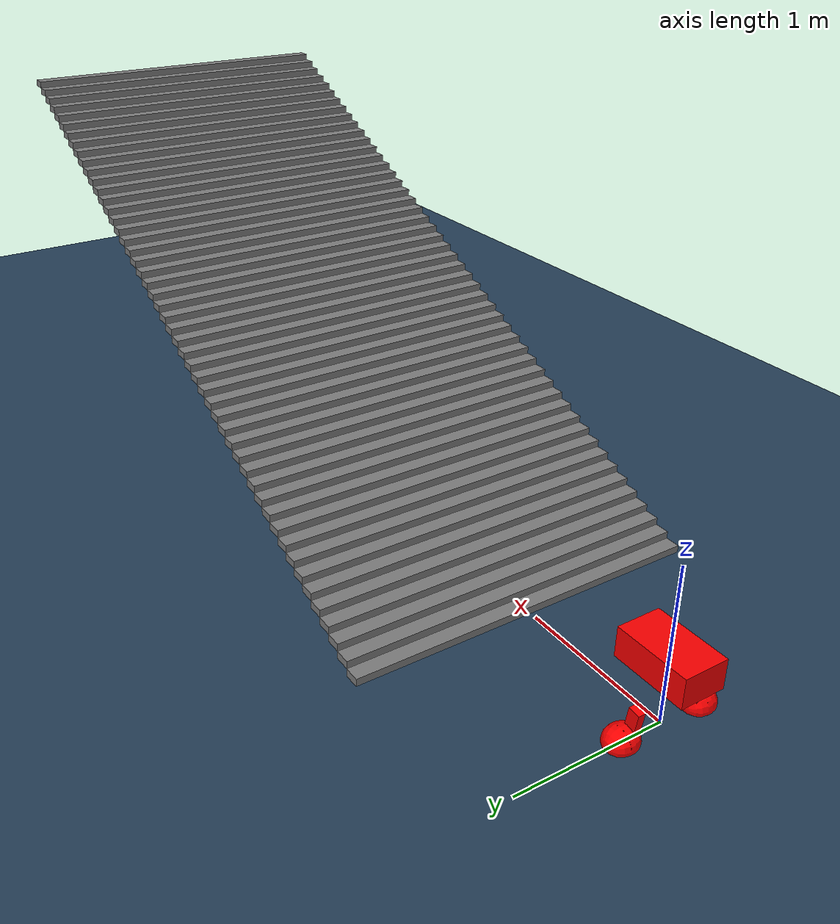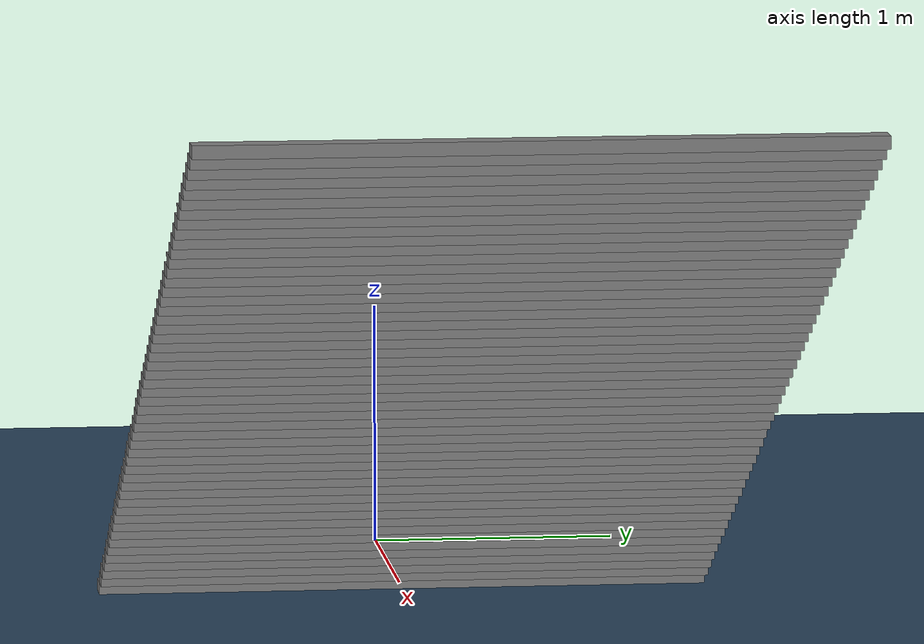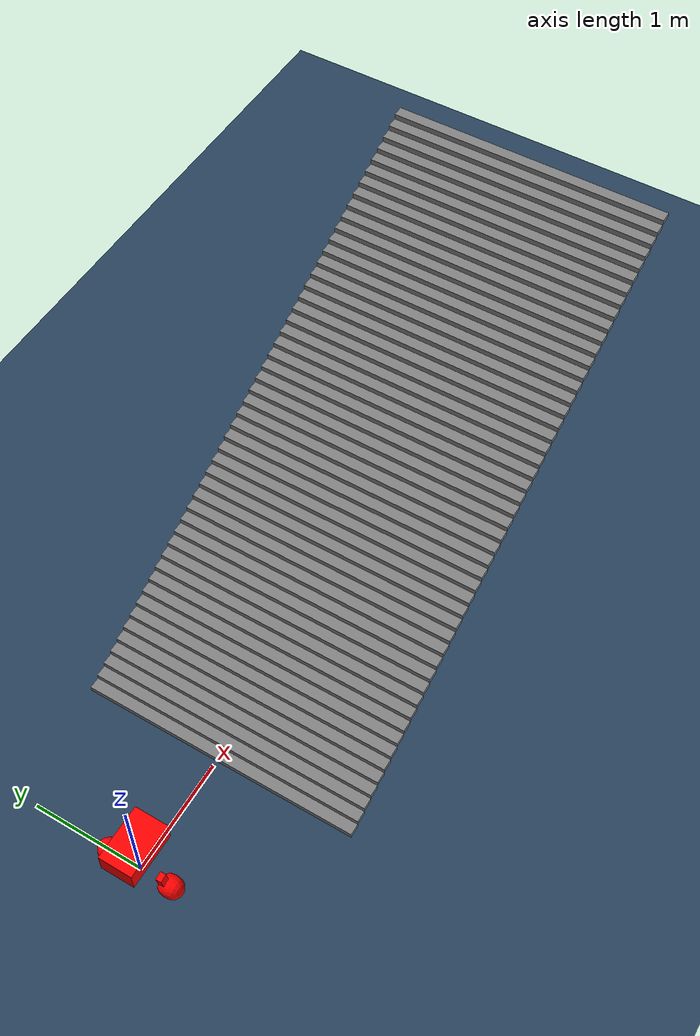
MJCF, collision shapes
<mujoco model="tita scene">
  <include file="tita.xml"/>

  <statistic center="0 0 0.1" extent="0.8" />

  <visual>
    <headlight diffuse="0.6 0.6 0.6" ambient="0.3 0.3 0.3" specular="0 0 0" />
    <rgba haze="0.15 0.25 0.35 1" />
    <global azimuth="-130" elevation="-20" />
  </visual>

  <asset>
    <texture type="skybox" builtin="gradient" rgb1="0.3 0.5 0.7" rgb2="0 0 0" width="512" height="3072" />
    <texture type="2d" name="groundplane" builtin="checker" mark="edge" rgb1="0.2 0.3 0.4" rgb2="0.1 0.2 0.3" markrgb="0.8 0.8 0.8" width="300" height="300" />
    <material name="groundplane" texture="groundplane" texuniform="true" texrepeat="5 5" reflectance="0.2" />
  </asset>

  <worldbody>
    <light pos="0 0 1.5" dir="0 0 -1" directional="true" />
    <geom name="floor" size="0 0 0.05" type="plane" material="groundplane"
    contype="1" conaffinity="0" priority="1" friction="0.6" condim="3"/>
  <geom pos="1.1 0.0 0.025" type="box" size="0.05 1.25 0.025" quat="1.0 0.0 0.0 0.0" /><geom pos="1.2 0.0 0.07500000000000001" type="box" size="0.05 1.25 0.025" quat="1.0 0.0 0.0 0.0" /><geom pos="1.3 0.0 0.125" type="box" size="0.05 1.25 0.025" quat="1.0 0.0 0.0 0.0" /><geom pos="1.4 0.0 0.175" type="box" size="0.05 1.25 0.025" quat="1.0 0.0 0.0 0.0" /><geom pos="1.5 0.0 0.22499999999999998" type="box" size="0.05 1.25 0.025" quat="1.0 0.0 0.0 0.0" /><geom pos="1.6 0.0 0.27499999999999997" type="box" size="0.05 1.25 0.025" quat="1.0 0.0 0.0 0.0" /><geom pos="1.7 0.0 0.32499999999999996" type="box" size="0.05 1.25 0.025" quat="1.0 0.0 0.0 0.0" /><geom pos="1.7999999999999998 0.0 0.37499999999999994" type="box" size="0.05 1.25 0.025" quat="1.0 0.0 0.0 0.0" /><geom pos="1.9 0.0 0.42499999999999993" type="box" size="0.05 1.25 0.025" quat="1.0 0.0 0.0 0.0" /><geom pos="2.0 0.0 0.4749999999999999" type="box" size="0.05 1.25 0.025" quat="1.0 0.0 0.0 0.0" /><geom pos="2.0999999999999996 0.0 0.5249999999999999" type="box" size="0.05 1.25 0.025" quat="1.0 0.0 0.0 0.0" /><geom pos="2.2 0.0 0.575" type="box" size="0.05 1.25 0.025" quat="1.0 0.0 0.0 0.0" /><geom pos="2.3 0.0 0.625" type="box" size="0.05 1.25 0.025" quat="1.0 0.0 0.0 0.0" /><geom pos="2.4000000000000004 0.0 0.675" type="box" size="0.05 1.25 0.025" quat="1.0 0.0 0.0 0.0" /><geom pos="2.5 0.0 0.7250000000000001" type="box" size="0.05 1.25 0.025" quat="1.0 0.0 0.0 0.0" /><geom pos="2.6000000000000005 0.0 0.7750000000000001" type="box" size="0.05 1.25 0.025" quat="1.0 0.0 0.0 0.0" /><geom pos="2.7 0.0 0.8250000000000002" type="box" size="0.05 1.25 0.025" quat="1.0 0.0 0.0 0.0" /><geom pos="2.8000000000000007 0.0 0.8750000000000002" type="box" size="0.05 1.25 0.025" quat="1.0 0.0 0.0 0.0" /><geom pos="2.9000000000000004 0.0 0.9250000000000003" type="box" size="0.05 1.25 0.025" quat="1.0 0.0 0.0 0.0" /><geom pos="3.0000000000000004 0.0 0.9750000000000003" type="box" size="0.05 1.25 0.025" quat="1.0 0.0 0.0 0.0" /><geom pos="3.1000000000000005 0.0 1.0250000000000004" type="box" size="0.05 1.25 0.025" quat="1.0 0.0 0.0 0.0" /><geom pos="3.2000000000000006 0.0 1.0750000000000004" type="box" size="0.05 1.25 0.025" quat="1.0 0.0 0.0 0.0" /><geom pos="3.3000000000000007 0.0 1.1250000000000004" type="box" size="0.05 1.25 0.025" quat="1.0 0.0 0.0 0.0" /><geom pos="3.400000000000001 0.0 1.1750000000000005" type="box" size="0.05 1.25 0.025" quat="1.0 0.0 0.0 0.0" /><geom pos="3.500000000000001 0.0 1.2250000000000005" type="box" size="0.05 1.25 0.025" quat="1.0 0.0 0.0 0.0" /><geom pos="3.600000000000001 0.0 1.2750000000000006" type="box" size="0.05 1.25 0.025" quat="1.0 0.0 0.0 0.0" /><geom pos="3.700000000000001 0.0 1.3250000000000006" type="box" size="0.05 1.25 0.025" quat="1.0 0.0 0.0 0.0" /><geom pos="3.800000000000001 0.0 1.3750000000000007" type="box" size="0.05 1.25 0.025" quat="1.0 0.0 0.0 0.0" /><geom pos="3.9000000000000012 0.0 1.4250000000000007" type="box" size="0.05 1.25 0.025" quat="1.0 0.0 0.0 0.0" /><geom pos="4.000000000000002 0.0 1.4750000000000008" type="box" size="0.05 1.25 0.025" quat="1.0 0.0 0.0 0.0" /><geom pos="4.100000000000001 0.0 1.5250000000000008" type="box" size="0.05 1.25 0.025" quat="1.0 0.0 0.0 0.0" /><geom pos="4.200000000000001 0.0 1.5750000000000008" type="box" size="0.05 1.25 0.025" quat="1.0 0.0 0.0 0.0" /><geom pos="4.300000000000002 0.0 1.6250000000000009" type="box" size="0.05 1.25 0.025" quat="1.0 0.0 0.0 0.0" /><geom pos="4.400000000000002 0.0 1.675000000000001" type="box" size="0.05 1.25 0.025" quat="1.0 0.0 0.0 0.0" /><geom pos="4.500000000000002 0.0 1.725000000000001" type="box" size="0.05 1.25 0.025" quat="1.0 0.0 0.0 0.0" /><geom pos="4.600000000000001 0.0 1.775000000000001" type="box" size="0.05 1.25 0.025" quat="1.0 0.0 0.0 0.0" /><geom pos="4.700000000000002 0.0 1.825000000000001" type="box" size="0.05 1.25 0.025" quat="1.0 0.0 0.0 0.0" /><geom pos="4.8000000000000025 0.0 1.875000000000001" type="box" size="0.05 1.25 0.025" quat="1.0 0.0 0.0 0.0" /><geom pos="4.900000000000002 0.0 1.9250000000000012" type="box" size="0.05 1.25 0.025" quat="1.0 0.0 0.0 0.0" /><geom pos="5.000000000000002 0.0 1.9750000000000012" type="box" size="0.05 1.25 0.025" quat="1.0 0.0 0.0 0.0" /><geom pos="5.100000000000001 0.0 2.0250000000000012" type="box" size="0.05 1.25 0.025" quat="1.0 0.0 0.0 0.0" /><geom pos="5.200000000000001 0.0 2.075000000000001" type="box" size="0.05 1.25 0.025" quat="1.0 0.0 0.0 0.0" /><geom pos="5.300000000000001 0.0 2.125000000000001" type="box" size="0.05 1.25 0.025" quat="1.0 0.0 0.0 0.0" /><geom pos="5.4 0.0 2.1750000000000007" type="box" size="0.05 1.25 0.025" quat="1.0 0.0 0.0 0.0" /><geom pos="5.5 0.0 2.2250000000000005" type="box" size="0.05 1.25 0.025" quat="1.0 0.0 0.0 0.0" /><geom pos="5.6 0.0 2.2750000000000004" type="box" size="0.05 1.25 0.025" quat="1.0 0.0 0.0 0.0" /><geom pos="5.699999999999999 0.0 2.325" type="box" size="0.05 1.25 0.025" quat="1.0 0.0 0.0 0.0" /><geom pos="5.799999999999999 0.0 2.375" type="box" size="0.05 1.25 0.025" quat="1.0 0.0 0.0 0.0" /><geom pos="5.899999999999999 0.0 2.425" type="box" size="0.05 1.25 0.025" quat="1.0 0.0 0.0 0.0" /><geom pos="5.999999999999998 0.0 2.4749999999999996" type="box" size="0.05 1.25 0.025" quat="1.0 0.0 0.0 0.0" /></worldbody>

   <include file="sensor_feet.xml"/>
</mujoco>

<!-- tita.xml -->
<mujoco model="tita">
  <option gravity="0 0 -9.81" iterations="10" ls_iterations="5"  integrator="Euler" timestep="0.002"/>
  <default>
    <default class="robot">

      <joint armature="0.0005" damping="0.0"/>
      <default class="joint_1">
        <joint range="-0.785398 0.785398" frictionloss="0.0" />
        <motor ctrllimited="true" ctrlrange="-120 120" forcerange="-120 120" gear="1" />
      </default>
      <default class="joint_2">
        <joint range="-1.919862 3.490659" frictionloss="0.0" />
        <motor ctrllimited="true" ctrlrange="-120 120" forcerange="-120 120" gear="1" />
      </default>
      <default class="joint_3">
        <joint range="-2.670354 -0.698132" frictionloss="0.0" />
        <motor ctrllimited="true" ctrlrange="-120 120" forcerange="-120 120" gear="1" />
      </default>
      <default class="joint_4">
        <joint limited="false" frictionloss="0.0" />
        <motor ctrllimited="true" ctrlrange="-120 120" forcerange="-120 120" gear="1" />
      </default>

      <default class="visual">
        <geom material="visualgeom" contype="0" conaffinity="0" group="2" />
      </default>
      <default class="collision">
        <geom material="collision_material" rgba="1 0 0 0.1" condim="3" contype="0" conaffinity="1" priority="1" group="1" solref="0.005 1" friction="1 0.01 0.01" />
        <equality solimp="0.99 0.999 1e-5" solref="0.005 1" />

      </default>
    </default>
  </default>

  <compiler angle="radian" />

  <visual>
    <headlight diffuse="0.6 0.6 0.6" ambient="0.1 0.1 0.1" specular="0.9 0.9 0.9"/>
    <rgba haze="0.15 0.25 0.35 1"/>
    <global azimuth="-140" elevation="-20" fovy="10"/>
  </visual>

  <asset>
    <material name="black" rgba="0.19607843137254902 0.19607843137254902 0.19607843137254902 1.0" />
    <material name="blue" rgba="0.0 0.0 0.8 1.0" />
    <material name="green" rgba="0.0 0.8 0.0 1.0" />
    <material name="grey" rgba="0.2 0.2 0.2 1.0" />
    <material name="silver" rgba="0.9137254901960784 0.9137254901960784 0.8470588235294118 1.0" />
    <material name="orange" rgba="1.0 0.4235294117647059 0.0392156862745098 1.0" />
    <material name="brown" rgba="0.8705882352941177 0.8117647058823529 0.7647058823529411 1.0" />
    <material name="red" rgba="0.8 0.0 0.0 1.0" />
    <material name="white" rgba="1.0 1.0 1.0 1.0" />
    <material name="default_material" rgba="0.7 0.7 0.7 1" />
    <material name="collision_material" rgba="1.0 0.28 0.1 0.9" />
    <texture name="grid" type="2d" builtin="checker" width="512" height="512" rgb1=".1 .2 .3" rgb2=".2 .3 .4"/>
    <material name="grid" texture="grid" texrepeat="1 1" texuniform="true" reflectance=".2"/>
    <mesh name="base_link.STL" file="meshes/base_link.STL" />
    <mesh name="left_leg_1.STL" file="meshes/left_leg_1.STL" />
    <mesh name="left_leg_2.STL" file="meshes/left_leg_2.STL" />
    <mesh name="left_leg_3.STL" file="meshes/left_leg_3.STL" />
    <mesh name="left_leg_4.STL" file="meshes/left_leg_4.STL" />
    <mesh name="right_leg_1.STL" file="meshes/right_leg_1.STL" />
    <mesh name="right_leg_2.STL" file="meshes/right_leg_2.STL" />
    <mesh name="right_leg_3.STL" file="meshes/right_leg_3.STL" />
    <mesh name="right_leg_4.STL" file="meshes/right_leg_4.STL" />
  </asset>

  <worldbody>
    <body name="base_link" pos="0.00000000 0.00000000 0.41700019" quat="1 0 0 0" childclass="robot">
      <inertial
      pos="0.020452 0.0000035457 0.01871"
      fullinertia="0.061855 0.036934 0.071232  -2.6029e-05 0.00081082 -1.7269e-05"
      mass="13.2"/>
      <freejoint name="floating_base" />
      <geom name="base_link_collision" pos="0 0 0.017" quat="1.0 0.0 0.0 0.0" type="box" size="0.235 0.15 0.095" class="collision" />
      <geom name="base_link_visual" pos="0 0 0" quat="1.0 0.0 0.0 0.0" material="black" type="mesh" mesh="base_link.STL" class="visual" />
      <body name="spad" pos="0.24052 -0.0019 0.064455" quat="0.3210553530053693 0.630017161436136 0.6300194756226387 0.3210565323096963" />
      <body name="spad1" pos="0.21953 -0.0019 -0.030142" quat="0.17822474632683974 0.684276335404186 0.6842788488961296 0.1782254009840898" />
      <body name="left_camera" pos="0.23416 0.075 0.04036" quat="0.49999816339744846 0.4999999999966269 0.5000018366025516 0.4999999999966269" />
      <body name="ch201" pos="0.23782 0 0.018636" quat="0.5896590127793068 0.39025685393799525 0.39025828743409546 0.5896611787217797" />
      <body name="right_camara" pos="0.23416 -0.075001 0.04036" quat="0.49999816339744846 0.4999999999966269 0.5000018366025516 0.4999999999966269" />
      <body name="imu_link" pos="0 0 0" quat="1.0 0.0 0.0 0.0">
        <inertial pos="0 0 0" quat="1.0 0.0 0.0 0.0" mass="0.001" diaginertia="0.0001 0.0001 0.0001" />
        <geom name="imu_link_collision" pos="0 0 0" quat="1.0 0.0 0.0 0.0" type="box" size="0.0005 0.0005 0.0005" class="collision" />
        <geom name="imu_link_visual" pos="0 0 0" quat="1.0 0.0 0.0 0.0" material="red" type="box" size="0.0005 0.0005 0.0005" class="visual" />
      </body>
      <body name="left_leg_1" pos="0 0.0895 0" quat="0.49999816339744846 0.4999999999966269 0.5000018366025516 0.4999999999966269">
        <joint name="joint_left_leg_1" type="hinge" ref="0.0" class="joint_1" range="-0.785398 0.785398" axis="0 0 1" />
        <inertial pos="0.0016025 5.0253E-05 0.000638" quat="1.0 0.0 0.0 0.0" mass="2.064" diaginertia="0.0043044 0.0029982 0.0022703" />
        <geom name="left_leg_1_visual" pos="0 0 0" quat="1.0 0.0 0.0 0.0" material="black" type="mesh" mesh="left_leg_1.STL" class="visual" />
        <body name="left_leg_2" pos="0.1426 0 0" quat="0.49999816339744846 -0.4999999999966269 0.5000018366025516 -0.4999999999966269">
          <joint name="joint_left_leg_2" type="hinge" ref="0.0" class="joint_2" range="-1.919862 3.490659" axis="0 0 1" />
          <inertial pos="0.021763 0.0019069 -0.027868" quat="1.0 0.0 0.0 0.0" mass="3.0984" diaginertia="0.0029784 0.0064836 0.0088353" />
          <geom name="left_leg_2_visual" pos="0 0 0" quat="1.0 0.0 0.0 0.0" material="black" type="mesh" mesh="left_leg_2.STL" class="visual" />
          <body name="left_leg_3" pos="0.2 0 0" quat="1.0 0.0 0.0 0.0">
            <joint name="joint_left_leg_3" type="hinge" ref="0.0" class="joint_3" range="-2.670354 -0.698132" axis="0 0 1" />
            <inertial pos="0.095348 0.011698 0.001838" mass="0.57244" fullinertia="0.00030595 0.0032009 0.0034209  0.00035537 -0.00011764 1.129E-05" />
            <geom name="left_leg_3_collision" pos="0.1 0.021 -0.002" quat="0.9978556418172091 0.0 0.0 -0.06545317481654923" type="box" size="0.1 0.035 0.025" class="collision" />
            <geom name="left_leg_3_visual" pos="0 0 0" quat="1.0 0.0 0.0 0.0" material="black" type="mesh" mesh="left_leg_3.STL" class="visual" />
            <body name="left_leg_4" pos="0.2 0 0.0514" quat="1.0 0.0 0.0 0.0">
              <joint name="joint_left_leg_4" type="hinge" ref="0.0" class="joint_4" range="-6.283185e4 6.283185e4" axis="0 0 1" />
              <inertial pos="-2.267E-06 -1.6471E-06 -0.00095616" quat="1.0 0.0 0.0 0.0" mass="1.5094" diaginertia="0.0035466 0.0035053 0.0069049" />
              <geom name="left_leg_4_collision" pos="0 0 0" quat="1.0 0.0 0.0 0.0" type="capsule" size="0.0925 0.017" class="collision" />
              <geom name="left_leg_4_visual" pos="0 0 0" quat="1.0 0.0 0.0 0.0" material="black" type="mesh" mesh="left_leg_4.STL" class="visual" />
              <site name="left_leg_4_site" pos="0 0 0" size="0.01" rgba="1 0 0 0.5"/>
            </body>
          </body>
        </body>
      </body>
      <body name="right_leg_1" pos="0 -0.0895 0" quat="0.49999816339744846 0.4999999999966269 0.5000018366025516 0.4999999999966269">
        <joint name="joint_right_leg_1" type="hinge" ref="0.0" class="joint_1" range="-0.785398 0.785398" axis="0 0 1" />
        <inertial pos="-0.0016025 5.0253E-05 0.00063801" quat="1.0 0.0 0.0 0.0" mass="2.064" diaginertia="0.0043044 0.0029982 0.0022703" />
        <geom name="right_leg_1_visual" pos="0 0 0" quat="1.0 0.0 0.0 0.0" material="black" type="mesh" mesh="right_leg_1.STL" class="visual" />
        <body name="right_leg_2" pos="-0.1426 0 0" quat="0.49999816339744846 -0.4999999999966269 0.5000018366025516 -0.4999999999966269">
          <joint name="joint_right_leg_2" type="hinge" ref="0.0" class="joint_2" range="-1.919862 3.490659" axis="0 0 1" />
          <inertial pos="0.021763 0.0019065 0.027873" quat="1.0 0.0 0.0 0.0" mass="3.0987" diaginertia="0.0029784 0.0064836 0.0088353" />
          <geom name="right_leg_2_visual" pos="0 0 0" quat="1.0 0.0 0.0 0.0" material="black" type="mesh" mesh="right_leg_2.STL" class="visual" />
          <body name="right_leg_3" pos="0.2 0 0" quat="1.0 0.0 0.0 0.0">
            <joint name="joint_right_leg_3" type="hinge" ref="0.0" class="joint_3" range="-2.670354 -0.698132" axis="0 0 1" />
            <inertial pos="0.095348 0.011698 -0.001838" mass="0.57244" fullinertia="0.00030595 0.0032009 0.0034209  0.00035537 0.00011764 -1.129E-05" />
            <geom name="right_leg_3_collision" pos="0.1 0.021 -0.002" quat="0.9978556418172091 0.0 0.0 -0.06545317481654923" type="box" size="0.1 0.035 0.025" class="collision" />
            <geom name="right_leg_3_visual" pos="0 0 0" quat="1.0 0.0 0.0 0.0" material="black" type="mesh" mesh="right_leg_3.STL" class="visual" />
            <body name="right_leg_4" pos="0.2 0 -0.0514" quat="1.0 0.0 0.0 0.0">
              <joint name="joint_right_leg_4" type="hinge" ref="0.0" class="joint_4" range="-6.283185e4 6.283185e4" axis="0 0 1" />
              <inertial pos="-2.3798E-06 -1.5854E-06 0.00095595" quat="1.0 0.0 0.0 0.0" mass="1.5094" diaginertia="0.0035465 0.0035052 0.0069047" />
              <geom name="right_leg_4_collision" pos="0 0 0" quat="1.0 0.0 0.0 0.0" type="capsule" size="0.0925 0.017" class="collision" />
              <geom name="right_leg_4_visual" pos="0 0 0" quat="1.0 0.0 0.0 0.0" material="black" type="mesh" mesh="right_leg_4.STL" class="visual" />
              <site name="right_leg_4_site" pos="0 0 0" size="0.01" rgba="1 0 0 0.5"/>
            </body>
          </body>
        </body>
      </body>
      <site name="base_link_site" pos="0 0 0" quat="1 0 0 0" />
      <camera name="front_camera" mode="track" fovy="90.0" quat="4.329780281177467e-17 4.329780281177466e-17 0.7071067811865475 0.7071067811865476" pos="0.0 2.0 0.5" />
      <camera name="side_camera" mode="track" fovy="90.0" quat="-0.5 -0.4999999999999999 0.5 0.5000000000000001" pos="-2.0 0.0 0.5" />
      <camera name="track" pos="0.846 -1.3 0.316" xyaxes="0.866 0.500 0.000 -0.171 0.296 0.940" mode="trackcom"/>
      <site name="imu" pos="0 0 0" quat="1 0 0 0" size="0.01" type="sphere" rgba="1 0 0 0.5" />
    </body>
  </worldbody>

  <actuator>
    <motor name="joint_left_leg_1_ctrl" joint="joint_left_leg_1" class="joint_1" />
    <motor name="joint_left_leg_2_ctrl" joint="joint_left_leg_2" class="joint_2" />
    <motor name="joint_left_leg_3_ctrl" joint="joint_left_leg_3" class="joint_3" />
    <motor name="joint_left_leg_4_ctrl" joint="joint_left_leg_4" class="joint_4" />
    <motor name="joint_right_leg_1_ctrl" joint="joint_right_leg_1" class="joint_1" />
    <motor name="joint_right_leg_2_ctrl" joint="joint_right_leg_2" class="joint_2" />
    <motor name="joint_right_leg_3_ctrl" joint="joint_right_leg_3" class="joint_3" />
    <motor name="joint_right_leg_4_ctrl" joint="joint_right_leg_4" class="joint_4" />
  </actuator>

  <contact>
    <exclude body1="base_link" body2="imu_link" />
    <exclude body1="left_leg_3" body2="left_leg_4" />
    <exclude body1="right_leg_3" body2="right_leg_4" />
  </contact>

  <sensor>
    <subtreecom name="base_subtree_com" body="base_link"/>
    <subtreelinvel name="base_subtree_linvel" body="base_link"/>
    <framepos name="base_link_site_pos" objtype="site" objname="base_link_site" />
    <framequat name="base_link_site_quat" objtype="site" objname="base_link_site" />
    <framelinvel name="base_link_site_linvel" objtype="site" objname="base_link_site" />
    <frameangvel name="base_link_site_angvel" objtype="site" objname="base_link_site" />
    <velocimeter name="base_link_site_vel" site="base_link_site" />
  </sensor>

  <sensor>
    <gyro site="imu" name="gyro"/>
    <velocimeter site="imu" name="local_linvel"/>
    <accelerometer site="imu" name="accelerometer"/>
    <framezaxis objtype="site" objname="imu" name="upvector"/>
    <framexaxis objtype="site" objname="imu" name="forwardvector"/>
    <framelinvel objtype="site" objname="imu" name="global_linvel"/>
    <frameangvel objtype="site" objname="imu" name="global_angvel"/>
    <framepos objtype="site" objname="imu" name="position"/>
    <framequat objtype="site" objname="imu" name="orientation"/>
    <framelinvel objtype="site" objname="left_leg_4_site"  name="left_leg_4_site_global_linvel"/>
    <framelinvel objtype="site" objname="right_leg_4_site" name="right_leg_4_site_global_linvel"/>
    <framexaxis objtype="site"  objname="left_leg_4_site"  name="left_leg_4_site_upvector"/>
    <framexaxis objtype="site"  objname="right_leg_4_site" name="right_leg_4_site_upvector"/>

    <framepos objtype="site" objname="left_leg_4_site"  name="left_leg_4_site_pos" reftype="site" refname="imu"/>
    <framepos objtype="site" objname="right_leg_4_site" name="right_leg_4_site_pos" reftype="site" refname="imu"/>

    <touch name="left_leg_4" site="left_leg_4_site"/>
    <touch name="right_leg_4" site="right_leg_4_site"/>
  </sensor>

  <keyframe>
    <key name="home" qpos="
    0 0 0.44
    1 0 0 0
    0 0.5 -1.0 0
    0 0.5 -1.0 0"
    />
  </keyframe>
</mujoco>

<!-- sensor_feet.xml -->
<mujoco>
  <sensor>
    <contact name="FR_floor_found" geom1="right_leg_4_collision" geom2="floor" reduce="mindist" num="1" data="found"/>
    <contact name="FL_floor_found" geom1="left_leg_4_collision" geom2="floor" reduce="mindist" num="1" data="found"/>
  </sensor>
</mujoco>
